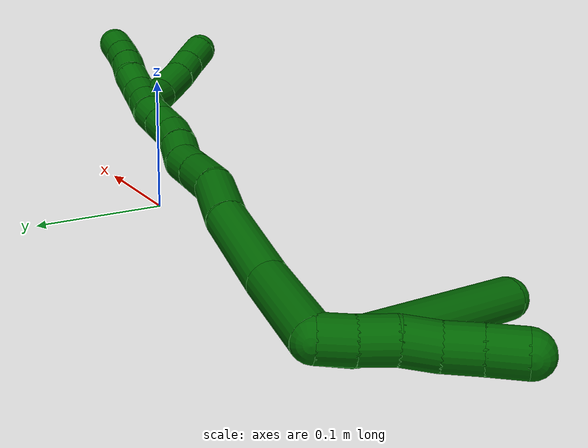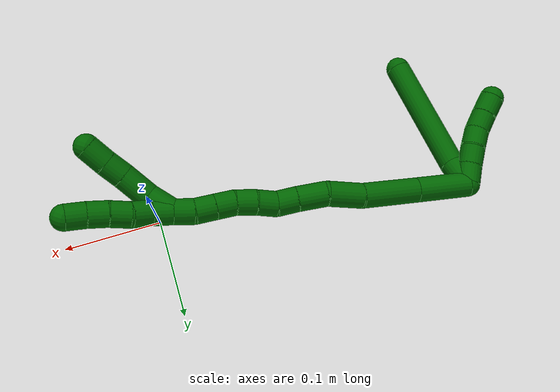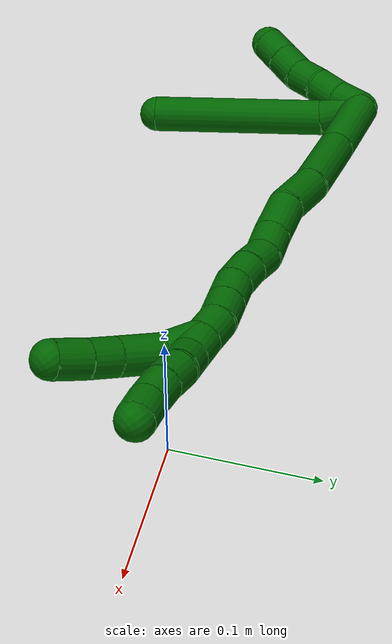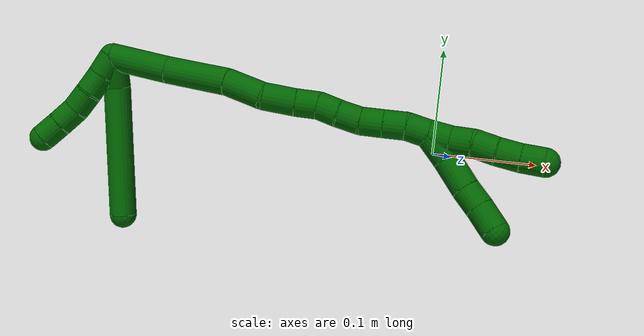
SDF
<sdf version="1.7">
 <world name="default">
  <model name="6">
   <static>0</static>
   <link name="6">
    <collision name="collision-cylinder-e_1_2_8">
     <pose>-0.008424 -0.00533 -0.010592 2.67539 -0.617701 -1.86214</pose>
     <geometry><cylinder><radius>0.0125</radius><length>0.029092</length></cylinder></geometry>
     <surface>
      <friction><ode><mu>1.16</mu><mu2>1.16</mu2><slip1>0</slip1><slip2>0</slip2></ode></friction>
      <contact><ode><kp>1e+06</kp><kd>1</kd><max_vel>0</max_vel><min_depth>0.001</min_depth></ode></contact>
     </surface>
    </collision>
    <visual name="visual-cylinder-e_1_2_8">
     <pose>-0.008424 -0.00533 -0.010592 2.67539 -0.617701 -1.86214</pose>
     <geometry><cylinder><radius>0.0125</radius><length>0.029092</length></cylinder></geometry>
     <material><ambient>0 0.392157 0.003922 1</ambient></material>
    </visual>
    <collision name="collision-cylinder-e_2_8_6">
     <pose>-0.039568 -0.046648 -0.06412 2.44399 -0.385276 -0.984617</pose>
     <geometry><cylinder><radius>0.0125</radius><length>0.120908</length></cylinder></geometry>
     <surface>
      <friction><ode><mu>1.16</mu><mu2>1.16</mu2><slip1>0</slip1><slip2>0</slip2></ode></friction>
      <contact><ode><kp>1e+06</kp><kd>1</kd><max_vel>0</max_vel><min_depth>0.001</min_depth></ode></contact>
     </surface>
    </collision>
    <visual name="visual-cylinder-e_2_8_6">
     <pose>-0.039568 -0.046648 -0.06412 2.44399 -0.385276 -0.984617</pose>
     <geometry><cylinder><radius>0.0125</radius><length>0.120908</length></cylinder></geometry>
     <material><ambient>0 0.392157 0.003922 1</ambient></material>
    </visual>
    <collision name="collision-cylinder-e_1_2_9">
     <pose>-0.006053 -0.007753 -0.001803 1.79933 -0.650081 -0.802675</pose>
     <geometry><cylinder><radius>0.0125</radius><length>0.02</length></cylinder></geometry>
     <surface>
      <friction><ode><mu>1.16</mu><mu2>1.16</mu2><slip1>0</slip1><slip2>0</slip2></ode></friction>
      <contact><ode><kp>1e+06</kp><kd>1</kd><max_vel>0</max_vel><min_depth>0.001</min_depth></ode></contact>
     </surface>
    </collision>
    <visual name="visual-cylinder-e_1_2_9">
     <pose>-0.006053 -0.007753 -0.001803 1.79933 -0.650081 -0.802675</pose>
     <geometry><cylinder><radius>0.0125</radius><length>0.02</length></cylinder></geometry>
     <material><ambient>0 0.392157 0.003922 1</ambient></material>
    </visual>
    <collision name="collision-cylinder-e_2_9_10">
     <pose>-0.017565 -0.023781 -0.00492 1.7282 -0.577634 -0.66979</pose>
     <geometry><cylinder><radius>0.0125</radius><length>0.02</length></cylinder></geometry>
     <surface>
      <friction><ode><mu>1.16</mu><mu2>1.16</mu2><slip1>0</slip1><slip2>0</slip2></ode></friction>
      <contact><ode><kp>1e+06</kp><kd>1</kd><max_vel>0</max_vel><min_depth>0.001</min_depth></ode></contact>
     </surface>
    </collision>
    <visual name="visual-cylinder-e_2_9_10">
     <pose>-0.017565 -0.023781 -0.00492 1.7282 -0.577634 -0.66979</pose>
     <geometry><cylinder><radius>0.0125</radius><length>0.02</length></cylinder></geometry>
     <material><ambient>0 0.392157 0.003922 1</ambient></material>
    </visual>
    <collision name="collision-cylinder-e_3_10_11">
     <pose>-0.029761 -0.039385 -0.007188 1.7003 -0.738936 -0.830612</pose>
     <geometry><cylinder><radius>0.0125</radius><length>0.02</length></cylinder></geometry>
     <surface>
      <friction><ode><mu>1.16</mu><mu2>1.16</mu2><slip1>0</slip1><slip2>0</slip2></ode></friction>
      <contact><ode><kp>1e+06</kp><kd>1</kd><max_vel>0</max_vel><min_depth>0.001</min_depth></ode></contact>
     </surface>
    </collision>
    <visual name="visual-cylinder-e_3_10_11">
     <pose>-0.029761 -0.039385 -0.007188 1.7003 -0.738936 -0.830612</pose>
     <geometry><cylinder><radius>0.0125</radius><length>0.02</length></cylinder></geometry>
     <material><ambient>0 0.392157 0.003922 1</ambient></material>
    </visual>
    <collision name="collision-cylinder-e_4_11_12">
     <pose>-0.042064 -0.054977 -0.00729 1.46802 -0.590495 -0.535581</pose>
     <geometry><cylinder><radius>0.0125</radius><length>0.02</length></cylinder></geometry>
     <surface>
      <friction><ode><mu>1.16</mu><mu2>1.16</mu2><slip1>0</slip1><slip2>0</slip2></ode></friction>
      <contact><ode><kp>1e+06</kp><kd>1</kd><max_vel>0</max_vel><min_depth>0.001</min_depth></ode></contact>
     </surface>
    </collision>
    <visual name="visual-cylinder-e_4_11_12">
     <pose>-0.042064 -0.054977 -0.00729 1.46802 -0.590495 -0.535581</pose>
     <geometry><cylinder><radius>0.0125</radius><length>0.02</length></cylinder></geometry>
     <material><ambient>0 0.392157 0.003922 1</ambient></material>
    </visual>
    <collision name="collision-cylinder-e_5_12_5">
     <pose>-0.053308 -0.071397 -0.005324 1.4351 -0.603712 -0.53068</pose>
     <geometry><cylinder><radius>0.0125</radius><length>0.02</length></cylinder></geometry>
     <surface>
      <friction><ode><mu>1.16</mu><mu2>1.16</mu2><slip1>0</slip1><slip2>0</slip2></ode></friction>
      <contact><ode><kp>1e+06</kp><kd>1</kd><max_vel>0</max_vel><min_depth>0.001</min_depth></ode></contact>
     </surface>
    </collision>
    <visual name="visual-cylinder-e_5_12_5">
     <pose>-0.053308 -0.071397 -0.005324 1.4351 -0.603712 -0.53068</pose>
     <geometry><cylinder><radius>0.0125</radius><length>0.02</length></cylinder></geometry>
     <material><ambient>0 0.392157 0.003922 1</ambient></material>
    </visual>
    <collision name="collision-cylinder-e_1_2_13">
     <pose>0.013857 0.006409 -0.022444 -2.86343 0.535755 -2.19836</pose>
     <geometry><cylinder><radius>0.0125</radius><length>0.054288</length></cylinder></geometry>
     <surface>
      <friction><ode><mu>1.16</mu><mu2>1.16</mu2><slip1>0</slip1><slip2>0</slip2></ode></friction>
      <contact><ode><kp>1e+06</kp><kd>1</kd><max_vel>0</max_vel><min_depth>0.001</min_depth></ode></contact>
     </surface>
    </collision>
    <visual name="visual-cylinder-e_1_2_13">
     <pose>0.013857 0.006409 -0.022444 -2.86343 0.535755 -2.19836</pose>
     <geometry><cylinder><radius>0.0125</radius><length>0.054288</length></cylinder></geometry>
     <material><ambient>0 0.392157 0.003922 1</ambient></material>
    </visual>
    <collision name="collision-cylinder-e_2_13_14">
     <pose>0.045727 0.018142 -0.067766 -2.91297 0.654192 -2.48899</pose>
     <geometry><cylinder><radius>0.0125</radius><length>0.059204</length></cylinder></geometry>
     <surface>
      <friction><ode><mu>1.16</mu><mu2>1.16</mu2><slip1>0</slip1><slip2>0</slip2></ode></friction>
      <contact><ode><kp>1e+06</kp><kd>1</kd><max_vel>0</max_vel><min_depth>0.001</min_depth></ode></contact>
     </surface>
    </collision>
    <visual name="visual-cylinder-e_2_13_14">
     <pose>0.045727 0.018142 -0.067766 -2.91297 0.654192 -2.48899</pose>
     <geometry><cylinder><radius>0.0125</radius><length>0.059204</length></cylinder></geometry>
     <material><ambient>0 0.392157 0.003922 1</ambient></material>
    </visual>
    <collision name="collision-cylinder-e_3_14_15">
     <pose>0.073117 0.024463 -0.10584 -3.07605 0.551938 -2.91108</pose>
     <geometry><cylinder><radius>0.0125</radius><length>0.035765</length></cylinder></geometry>
     <surface>
      <friction><ode><mu>1.16</mu><mu2>1.16</mu2><slip1>0</slip1><slip2>0</slip2></ode></friction>
      <contact><ode><kp>1e+06</kp><kd>1</kd><max_vel>0</max_vel><min_depth>0.001</min_depth></ode></contact>
     </surface>
    </collision>
    <visual name="visual-cylinder-e_3_14_15">
     <pose>0.073117 0.024463 -0.10584 -3.07605 0.551938 -2.91108</pose>
     <geometry><cylinder><radius>0.0125</radius><length>0.035765</length></cylinder></geometry>
     <material><ambient>0 0.392157 0.003922 1</ambient></material>
    </visual>
    <collision name="collision-cylinder-e_4_15_16">
     <pose>0.089131 0.030339 -0.133266 -2.76208 0.466874 -1.78265</pose>
     <geometry><cylinder><radius>0.0125</radius><length>0.029495</length></cylinder></geometry>
     <surface>
      <friction><ode><mu>1.16</mu><mu2>1.16</mu2><slip1>0</slip1><slip2>0</slip2></ode></friction>
      <contact><ode><kp>1e+06</kp><kd>1</kd><max_vel>0</max_vel><min_depth>0.001</min_depth></ode></contact>
     </surface>
    </collision>
    <visual name="visual-cylinder-e_4_15_16">
     <pose>0.089131 0.030339 -0.133266 -2.76208 0.466874 -1.78265</pose>
     <geometry><cylinder><radius>0.0125</radius><length>0.029495</length></cylinder></geometry>
     <material><ambient>0 0.392157 0.003922 1</ambient></material>
    </visual>
    <collision name="collision-cylinder-e_5_16_17">
     <pose>0.101072 0.038907 -0.153732 -2.72038 0.531386 -1.80983</pose>
     <geometry><cylinder><radius>0.0125</radius><length>0.02093</length></cylinder></geometry>
     <surface>
      <friction><ode><mu>1.16</mu><mu2>1.16</mu2><slip1>0</slip1><slip2>0</slip2></ode></friction>
      <contact><ode><kp>1e+06</kp><kd>1</kd><max_vel>0</max_vel><min_depth>0.001</min_depth></ode></contact>
     </surface>
    </collision>
    <visual name="visual-cylinder-e_5_16_17">
     <pose>0.101072 0.038907 -0.153732 -2.72038 0.531386 -1.80983</pose>
     <geometry><cylinder><radius>0.0125</radius><length>0.02093</length></cylinder></geometry>
     <material><ambient>0 0.392157 0.003922 1</ambient></material>
    </visual>
    <collision name="collision-cylinder-e_6_17_18">
     <pose>0.111921 0.042778 -0.170399 -3.11998 0.581666 -3.06941</pose>
     <geometry><cylinder><radius>0.0125</radius><length>0.020192</length></cylinder></geometry>
     <surface>
      <friction><ode><mu>1.16</mu><mu2>1.16</mu2><slip1>0</slip1><slip2>0</slip2></ode></friction>
      <contact><ode><kp>1e+06</kp><kd>1</kd><max_vel>0</max_vel><min_depth>0.001</min_depth></ode></contact>
     </surface>
    </collision>
    <visual name="visual-cylinder-e_6_17_18">
     <pose>0.111921 0.042778 -0.170399 -3.11998 0.581666 -3.06941</pose>
     <geometry><cylinder><radius>0.0125</radius><length>0.020192</length></cylinder></geometry>
     <material><ambient>0 0.392157 0.003922 1</ambient></material>
    </visual>
    <collision name="collision-cylinder-e_7_18_19">
     <pose>0.122529 0.044343 -0.187375 -2.98106 0.529148 -2.56436</pose>
     <geometry><cylinder><radius>0.0125</radius><length>0.020051</length></cylinder></geometry>
     <surface>
      <friction><ode><mu>1.16</mu><mu2>1.16</mu2><slip1>0</slip1><slip2>0</slip2></ode></friction>
      <contact><ode><kp>1e+06</kp><kd>1</kd><max_vel>0</max_vel><min_depth>0.001</min_depth></ode></contact>
     </surface>
    </collision>
    <visual name="visual-cylinder-e_7_18_19">
     <pose>0.122529 0.044343 -0.187375 -2.98106 0.529148 -2.56436</pose>
     <geometry><cylinder><radius>0.0125</radius><length>0.020051</length></cylinder></geometry>
     <material><ambient>0 0.392157 0.003922 1</ambient></material>
    </visual>
    <collision name="collision-cylinder-e_8_19_20">
     <pose>0.133485 0.048695 -0.203453 -2.76629 0.629239 -2.08521</pose>
     <geometry><cylinder><radius>0.0125</radius><length>0.020033</length></cylinder></geometry>
     <surface>
      <friction><ode><mu>1.16</mu><mu2>1.16</mu2><slip1>0</slip1><slip2>0</slip2></ode></friction>
      <contact><ode><kp>1e+06</kp><kd>1</kd><max_vel>0</max_vel><min_depth>0.001</min_depth></ode></contact>
     </surface>
    </collision>
    <visual name="visual-cylinder-e_8_19_20">
     <pose>0.133485 0.048695 -0.203453 -2.76629 0.629239 -2.08521</pose>
     <geometry><cylinder><radius>0.0125</radius><length>0.020033</length></cylinder></geometry>
     <material><ambient>0 0.392157 0.003922 1</ambient></material>
    </visual>
    <collision name="collision-cylinder-e_9_20_21">
     <pose>0.145346 0.054623 -0.218459 -2.76442 0.638603 -2.0945</pose>
     <geometry><cylinder><radius>0.0125</radius><length>0.020017</length></cylinder></geometry>
     <surface>
      <friction><ode><mu>1.16</mu><mu2>1.16</mu2><slip1>0</slip1><slip2>0</slip2></ode></friction>
      <contact><ode><kp>1e+06</kp><kd>1</kd><max_vel>0</max_vel><min_depth>0.001</min_depth></ode></contact>
     </surface>
    </collision>
    <visual name="visual-cylinder-e_9_20_21">
     <pose>0.145346 0.054623 -0.218459 -2.76442 0.638603 -2.0945</pose>
     <geometry><cylinder><radius>0.0125</radius><length>0.020017</length></cylinder></geometry>
     <material><ambient>0 0.392157 0.003922 1</ambient></material>
    </visual>
    <collision name="collision-cylinder-e_10_21_1">
     <pose>0.156226 0.058987 -0.23454 -2.97998 0.512983 -2.54261</pose>
     <geometry><cylinder><radius>0.0125</radius><length>0.020025</length></cylinder></geometry>
     <surface>
      <friction><ode><mu>1.16</mu><mu2>1.16</mu2><slip1>0</slip1><slip2>0</slip2></ode></friction>
      <contact><ode><kp>1e+06</kp><kd>1</kd><max_vel>0</max_vel><min_depth>0.001</min_depth></ode></contact>
     </surface>
    </collision>
    <visual name="visual-cylinder-e_10_21_1">
     <pose>0.156226 0.058987 -0.23454 -2.97998 0.512983 -2.54261</pose>
     <geometry><cylinder><radius>0.0125</radius><length>0.020025</length></cylinder></geometry>
     <material><ambient>0 0.392157 0.003922 1</ambient></material>
    </visual>
    <collision name="collision-cylinder-e_1_1_22">
     <pose>0.16663 0.061977 -0.251356 -2.95055 0.581212 -2.52152</pose>
     <geometry><cylinder><radius>0.0125</radius><length>0.02</length></cylinder></geometry>
     <surface>
      <friction><ode><mu>1.16</mu><mu2>1.16</mu2><slip1>0</slip1><slip2>0</slip2></ode></friction>
      <contact><ode><kp>1e+06</kp><kd>1</kd><max_vel>0</max_vel><min_depth>0.001</min_depth></ode></contact>
     </surface>
    </collision>
    <visual name="visual-cylinder-e_1_1_22">
     <pose>0.16663 0.061977 -0.251356 -2.95055 0.581212 -2.52152</pose>
     <geometry><cylinder><radius>0.0125</radius><length>0.02</length></cylinder></geometry>
     <material><ambient>0 0.392157 0.003922 1</ambient></material>
    </visual>
    <collision name="collision-cylinder-e_2_22_23">
     <pose>0.179593 0.064444 -0.266149 -3.0089 0.843945 -2.84772</pose>
     <geometry><cylinder><radius>0.0125</radius><length>0.02</length></cylinder></geometry>
     <surface>
      <friction><ode><mu>1.16</mu><mu2>1.16</mu2><slip1>0</slip1><slip2>0</slip2></ode></friction>
      <contact><ode><kp>1e+06</kp><kd>1</kd><max_vel>0</max_vel><min_depth>0.001</min_depth></ode></contact>
     </surface>
    </collision>
    <visual name="visual-cylinder-e_2_22_23">
     <pose>0.179593 0.064444 -0.266149 -3.0089 0.843945 -2.84772</pose>
     <geometry><cylinder><radius>0.0125</radius><length>0.02</length></cylinder></geometry>
     <material><ambient>0 0.392157 0.003922 1</ambient></material>
    </visual>
    <collision name="collision-cylinder-e_3_23_24">
     <pose>0.192897 0.065676 -0.280852 -3.09815 0.62253 -3.00675</pose>
     <geometry><cylinder><radius>0.0125</radius><length>0.02</length></cylinder></geometry>
     <surface>
      <friction><ode><mu>1.16</mu><mu2>1.16</mu2><slip1>0</slip1><slip2>0</slip2></ode></friction>
      <contact><ode><kp>1e+06</kp><kd>1</kd><max_vel>0</max_vel><min_depth>0.001</min_depth></ode></contact>
     </surface>
    </collision>
    <visual name="visual-cylinder-e_3_23_24">
     <pose>0.192897 0.065676 -0.280852 -3.09815 0.62253 -3.00675</pose>
     <geometry><cylinder><radius>0.0125</radius><length>0.02</length></cylinder></geometry>
     <material><ambient>0 0.392157 0.003922 1</ambient></material>
    </visual>
    <collision name="collision-cylinder-e_4_24_25">
     <pose>0.204377 0.067458 -0.297095 -2.96747 0.600333 -2.59189</pose>
     <geometry><cylinder><radius>0.0125</radius><length>0.02</length></cylinder></geometry>
     <surface>
      <friction><ode><mu>1.16</mu><mu2>1.16</mu2><slip1>0</slip1><slip2>0</slip2></ode></friction>
      <contact><ode><kp>1e+06</kp><kd>1</kd><max_vel>0</max_vel><min_depth>0.001</min_depth></ode></contact>
     </surface>
    </collision>
    <visual name="visual-cylinder-e_4_24_25">
     <pose>0.204377 0.067458 -0.297095 -2.96747 0.600333 -2.59189</pose>
     <geometry><cylinder><radius>0.0125</radius><length>0.02</length></cylinder></geometry>
     <material><ambient>0 0.392157 0.003922 1</ambient></material>
    </visual>
    <collision name="collision-cylinder-e_5_25_4">
     <pose>0.216404 0.07068 -0.312712 -2.90671 0.691642 -2.50867</pose>
     <geometry><cylinder><radius>0.0125</radius><length>0.02</length></cylinder></geometry>
     <surface>
      <friction><ode><mu>1.16</mu><mu2>1.16</mu2><slip1>0</slip1><slip2>0</slip2></ode></friction>
      <contact><ode><kp>1e+06</kp><kd>1</kd><max_vel>0</max_vel><min_depth>0.001</min_depth></ode></contact>
     </surface>
    </collision>
    <visual name="visual-cylinder-e_5_25_4">
     <pose>0.216404 0.07068 -0.312712 -2.90671 0.691642 -2.50867</pose>
     <geometry><cylinder><radius>0.0125</radius><length>0.02</length></cylinder></geometry>
     <material><ambient>0 0.392157 0.003922 1</ambient></material>
    </visual>
    <collision name="collision-cylinder-e_1_1_26">
     <pose>0.161628 0.056813 -0.255944 2.86891 0.03672 0.266107</pose>
     <geometry><cylinder><radius>0.0125</radius><length>0.026587</length></cylinder></geometry>
     <surface>
      <friction><ode><mu>1.16</mu><mu2>1.16</mu2><slip1>0</slip1><slip2>0</slip2></ode></friction>
      <contact><ode><kp>1e+06</kp><kd>1</kd><max_vel>0</max_vel><min_depth>0.001</min_depth></ode></contact>
     </surface>
    </collision>
    <visual name="visual-cylinder-e_1_1_26">
     <pose>0.161628 0.056813 -0.255944 2.86891 0.03672 0.266107</pose>
     <geometry><cylinder><radius>0.0125</radius><length>0.026587</length></cylinder></geometry>
     <material><ambient>0 0.392157 0.003922 1</ambient></material>
    </visual>
    <collision name="collision-cylinder-e_2_26_27">
     <pose>0.165135 0.046015 -0.281785 2.63612 0.199786 0.74039</pose>
     <geometry><cylinder><radius>0.0125</radius><length>0.030428</length></cylinder></geometry>
     <surface>
      <friction><ode><mu>1.16</mu><mu2>1.16</mu2><slip1>0</slip1><slip2>0</slip2></ode></friction>
      <contact><ode><kp>1e+06</kp><kd>1</kd><max_vel>0</max_vel><min_depth>0.001</min_depth></ode></contact>
     </surface>
    </collision>
    <visual name="visual-cylinder-e_2_26_27">
     <pose>0.165135 0.046015 -0.281785 2.63612 0.199786 0.74039</pose>
     <geometry><cylinder><radius>0.0125</radius><length>0.030428</length></cylinder></geometry>
     <material><ambient>0 0.392157 0.003922 1</ambient></material>
    </visual>
    <collision name="collision-cylinder-e_3_27_28">
     <pose>0.17103 0.034179 -0.303234 2.63936 0.291352 1.03903</pose>
     <geometry><cylinder><radius>0.0125</radius><length>0.020018</length></cylinder></geometry>
     <surface>
      <friction><ode><mu>1.16</mu><mu2>1.16</mu2><slip1>0</slip1><slip2>0</slip2></ode></friction>
      <contact><ode><kp>1e+06</kp><kd>1</kd><max_vel>0</max_vel><min_depth>0.001</min_depth></ode></contact>
     </surface>
    </collision>
    <visual name="visual-cylinder-e_3_27_28">
     <pose>0.17103 0.034179 -0.303234 2.63936 0.291352 1.03903</pose>
     <geometry><cylinder><radius>0.0125</radius><length>0.020018</length></cylinder></geometry>
     <material><ambient>0 0.392157 0.003922 1</ambient></material>
    </visual>
    <collision name="collision-cylinder-e_4_28_3">
     <pose>0.176956 0.023731 -0.321047 2.58669 0.268952 0.886972</pose>
     <geometry><cylinder><radius>0.0125</radius><length>0.022967</length></cylinder></geometry>
     <surface>
      <friction><ode><mu>1.16</mu><mu2>1.16</mu2><slip1>0</slip1><slip2>0</slip2></ode></friction>
      <contact><ode><kp>1e+06</kp><kd>1</kd><max_vel>0</max_vel><min_depth>0.001</min_depth></ode></contact>
     </surface>
    </collision>
    <visual name="visual-cylinder-e_4_28_3">
     <pose>0.176956 0.023731 -0.321047 2.58669 0.268952 0.886972</pose>
     <geometry><cylinder><radius>0.0125</radius><length>0.022967</length></cylinder></geometry>
     <material><ambient>0 0.392157 0.003922 1</ambient></material>
    </visual>
    <collision name="collision-sphere-3">
     <pose>0.180007 0.017899 -0.330457 0 -0 0</pose>
     <geometry><sphere><radius>0.0125</radius></sphere></geometry>
     <surface>
      <friction><ode><mu>1.16</mu><mu2>1.16</mu2><slip1>0</slip1><slip2>0</slip2></ode></friction>
      <contact><ode><kp>1e+06</kp><kd>1</kd><max_vel>0</max_vel><min_depth>0.001</min_depth></ode></contact>
     </surface>
    </collision>
    <visual name="visual-sphere-3">
     <pose>0.180007 0.017899 -0.330457 0 -0 0</pose>
     <geometry><sphere><radius>0.0125</radius></sphere></geometry>
     <material><ambient>0 0.392157 0.003922 1</ambient></material>
    </visual>
    <collision name="collision-sphere-28">
     <pose>0.173905 0.029564 -0.311638 0 -0 0</pose>
     <geometry><sphere><radius>0.0125</radius></sphere></geometry>
     <surface>
      <friction><ode><mu>1.16</mu><mu2>1.16</mu2><slip1>0</slip1><slip2>0</slip2></ode></friction>
      <contact><ode><kp>1e+06</kp><kd>1</kd><max_vel>0</max_vel><min_depth>0.001</min_depth></ode></contact>
     </surface>
    </collision>
    <visual name="visual-sphere-28">
     <pose>0.173905 0.029564 -0.311638 0 -0 0</pose>
     <geometry><sphere><radius>0.0125</radius></sphere></geometry>
     <material><ambient>0 0.392157 0.003922 1</ambient></material>
    </visual>
    <collision name="collision-sphere-27">
     <pose>0.168155 0.038794 -0.294831 0 -0 0</pose>
     <geometry><sphere><radius>0.0125</radius></sphere></geometry>
     <surface>
      <friction><ode><mu>1.16</mu><mu2>1.16</mu2><slip1>0</slip1><slip2>0</slip2></ode></friction>
      <contact><ode><kp>1e+06</kp><kd>1</kd><max_vel>0</max_vel><min_depth>0.001</min_depth></ode></contact>
     </surface>
    </collision>
    <visual name="visual-sphere-27">
     <pose>0.168155 0.038794 -0.294831 0 -0 0</pose>
     <geometry><sphere><radius>0.0125</radius></sphere></geometry>
     <material><ambient>0 0.392157 0.003922 1</ambient></material>
    </visual>
    <collision name="collision-sphere-26">
     <pose>0.162116 0.053235 -0.268738 0 -0 0</pose>
     <geometry><sphere><radius>0.0125</radius></sphere></geometry>
     <surface>
      <friction><ode><mu>1.16</mu><mu2>1.16</mu2><slip1>0</slip1><slip2>0</slip2></ode></friction>
      <contact><ode><kp>1e+06</kp><kd>1</kd><max_vel>0</max_vel><min_depth>0.001</min_depth></ode></contact>
     </surface>
    </collision>
    <visual name="visual-sphere-26">
     <pose>0.162116 0.053235 -0.268738 0 -0 0</pose>
     <geometry><sphere><radius>0.0125</radius></sphere></geometry>
     <material><ambient>0 0.392157 0.003922 1</ambient></material>
    </visual>
    <collision name="collision-sphere-4">
     <pose>0.222782 0.072472 -0.320203 0 -0 0</pose>
     <geometry><sphere><radius>0.0125</radius></sphere></geometry>
     <surface>
      <friction><ode><mu>1.16</mu><mu2>1.16</mu2><slip1>0</slip1><slip2>0</slip2></ode></friction>
      <contact><ode><kp>1e+06</kp><kd>1</kd><max_vel>0</max_vel><min_depth>0.001</min_depth></ode></contact>
     </surface>
    </collision>
    <visual name="visual-sphere-4">
     <pose>0.222782 0.072472 -0.320203 0 -0 0</pose>
     <geometry><sphere><radius>0.0125</radius></sphere></geometry>
     <material><ambient>0 0.392157 0.003922 1</ambient></material>
    </visual>
    <collision name="collision-sphere-25">
     <pose>0.210026 0.068887 -0.305222 0 -0 0</pose>
     <geometry><sphere><radius>0.0125</radius></sphere></geometry>
     <surface>
      <friction><ode><mu>1.16</mu><mu2>1.16</mu2><slip1>0</slip1><slip2>0</slip2></ode></friction>
      <contact><ode><kp>1e+06</kp><kd>1</kd><max_vel>0</max_vel><min_depth>0.001</min_depth></ode></contact>
     </surface>
    </collision>
    <visual name="visual-sphere-25">
     <pose>0.210026 0.068887 -0.305222 0 -0 0</pose>
     <geometry><sphere><radius>0.0125</radius></sphere></geometry>
     <material><ambient>0 0.392157 0.003922 1</ambient></material>
    </visual>
    <collision name="collision-sphere-24">
     <pose>0.198728 0.066028 -0.288969 0 -0 0</pose>
     <geometry><sphere><radius>0.0125</radius></sphere></geometry>
     <surface>
      <friction><ode><mu>1.16</mu><mu2>1.16</mu2><slip1>0</slip1><slip2>0</slip2></ode></friction>
      <contact><ode><kp>1e+06</kp><kd>1</kd><max_vel>0</max_vel><min_depth>0.001</min_depth></ode></contact>
     </surface>
    </collision>
    <visual name="visual-sphere-24">
     <pose>0.198728 0.066028 -0.288969 0 -0 0</pose>
     <geometry><sphere><radius>0.0125</radius></sphere></geometry>
     <material><ambient>0 0.392157 0.003922 1</ambient></material>
    </visual>
    <collision name="collision-sphere-23">
     <pose>0.187066 0.065323 -0.272736 0 -0 0</pose>
     <geometry><sphere><radius>0.0125</radius></sphere></geometry>
     <surface>
      <friction><ode><mu>1.16</mu><mu2>1.16</mu2><slip1>0</slip1><slip2>0</slip2></ode></friction>
      <contact><ode><kp>1e+06</kp><kd>1</kd><max_vel>0</max_vel><min_depth>0.001</min_depth></ode></contact>
     </surface>
    </collision>
    <visual name="visual-sphere-23">
     <pose>0.187066 0.065323 -0.272736 0 -0 0</pose>
     <geometry><sphere><radius>0.0125</radius></sphere></geometry>
     <material><ambient>0 0.392157 0.003922 1</ambient></material>
    </visual>
    <collision name="collision-sphere-22">
     <pose>0.17212 0.063564 -0.259562 0 -0 0</pose>
     <geometry><sphere><radius>0.0125</radius></sphere></geometry>
     <surface>
      <friction><ode><mu>1.16</mu><mu2>1.16</mu2><slip1>0</slip1><slip2>0</slip2></ode></friction>
      <contact><ode><kp>1e+06</kp><kd>1</kd><max_vel>0</max_vel><min_depth>0.001</min_depth></ode></contact>
     </surface>
    </collision>
    <visual name="visual-sphere-22">
     <pose>0.17212 0.063564 -0.259562 0 -0 0</pose>
     <geometry><sphere><radius>0.0125</radius></sphere></geometry>
     <material><ambient>0 0.392157 0.003922 1</ambient></material>
    </visual>
    <collision name="collision-sphere-1">
     <pose>0.16114 0.06039 -0.24315 0 -0 0</pose>
     <geometry><sphere><radius>0.0125</radius></sphere></geometry>
     <surface>
      <friction><ode><mu>1.16</mu><mu2>1.16</mu2><slip1>0</slip1><slip2>0</slip2></ode></friction>
      <contact><ode><kp>1e+06</kp><kd>1</kd><max_vel>0</max_vel><min_depth>0.001</min_depth></ode></contact>
     </surface>
    </collision>
    <visual name="visual-sphere-1">
     <pose>0.16114 0.06039 -0.24315 0 -0 0</pose>
     <geometry><sphere><radius>0.0125</radius></sphere></geometry>
     <material><ambient>0 0.392157 0.003922 1</ambient></material>
    </visual>
    <collision name="collision-sphere-21">
     <pose>0.151312 0.057583 -0.22593 0 -0 0</pose>
     <geometry><sphere><radius>0.0125</radius></sphere></geometry>
     <surface>
      <friction><ode><mu>1.16</mu><mu2>1.16</mu2><slip1>0</slip1><slip2>0</slip2></ode></friction>
      <contact><ode><kp>1e+06</kp><kd>1</kd><max_vel>0</max_vel><min_depth>0.001</min_depth></ode></contact>
     </surface>
    </collision>
    <visual name="visual-sphere-21">
     <pose>0.151312 0.057583 -0.22593 0 -0 0</pose>
     <geometry><sphere><radius>0.0125</radius></sphere></geometry>
     <material><ambient>0 0.392157 0.003922 1</ambient></material>
    </visual>
    <collision name="collision-sphere-11">
     <pose>-0.036496 -0.046715 -0.008142 0 -0 0</pose>
     <geometry><sphere><radius>0.0125</radius></sphere></geometry>
     <surface>
      <friction><ode><mu>1.16</mu><mu2>1.16</mu2><slip1>0</slip1><slip2>0</slip2></ode></friction>
      <contact><ode><kp>1e+06</kp><kd>1</kd><max_vel>0</max_vel><min_depth>0.001</min_depth></ode></contact>
     </surface>
    </collision>
    <visual name="visual-sphere-11">
     <pose>-0.036496 -0.046715 -0.008142 0 -0 0</pose>
     <geometry><sphere><radius>0.0125</radius></sphere></geometry>
     <material><ambient>0 0.392157 0.003922 1</ambient></material>
    </visual>
    <collision name="collision-sphere-10">
     <pose>-0.023026 -0.032055 -0.006233 0 -0 0</pose>
     <geometry><sphere><radius>0.0125</radius></sphere></geometry>
     <surface>
      <friction><ode><mu>1.16</mu><mu2>1.16</mu2><slip1>0</slip1><slip2>0</slip2></ode></friction>
      <contact><ode><kp>1e+06</kp><kd>1</kd><max_vel>0</max_vel><min_depth>0.001</min_depth></ode></contact>
     </surface>
    </collision>
    <visual name="visual-sphere-10">
     <pose>-0.023026 -0.032055 -0.006233 0 -0 0</pose>
     <geometry><sphere><radius>0.0125</radius></sphere></geometry>
     <material><ambient>0 0.392157 0.003922 1</ambient></material>
    </visual>
    <collision name="collision-sphere-6">
     <pose>-0.062288 -0.082636 -0.107055 0 -0 0</pose>
     <geometry><sphere><radius>0.0125</radius></sphere></geometry>
     <surface>
      <friction><ode><mu>1.16</mu><mu2>1.16</mu2><slip1>0</slip1><slip2>0</slip2></ode></friction>
      <contact><ode><kp>1e+06</kp><kd>1</kd><max_vel>0</max_vel><min_depth>0.001</min_depth></ode></contact>
     </surface>
    </collision>
    <visual name="visual-sphere-6">
     <pose>-0.062288 -0.082636 -0.107055 0 -0 0</pose>
     <geometry><sphere><radius>0.0125</radius></sphere></geometry>
     <material><ambient>0 0.392157 0.003922 1</ambient></material>
    </visual>
    <collision name="collision-sphere-9">
     <pose>-0.012105 -0.015507 -0.003607 0 -0 0</pose>
     <geometry><sphere><radius>0.0125</radius></sphere></geometry>
     <surface>
      <friction><ode><mu>1.16</mu><mu2>1.16</mu2><slip1>0</slip1><slip2>0</slip2></ode></friction>
      <contact><ode><kp>1e+06</kp><kd>1</kd><max_vel>0</max_vel><min_depth>0.001</min_depth></ode></contact>
     </surface>
    </collision>
    <visual name="visual-sphere-9">
     <pose>-0.012105 -0.015507 -0.003607 0 -0 0</pose>
     <geometry><sphere><radius>0.0125</radius></sphere></geometry>
     <material><ambient>0 0.392157 0.003922 1</ambient></material>
    </visual>
    <collision name="collision-sphere-2">
     <geometry><sphere><radius>0.0125</radius></sphere></geometry>
     <surface>
      <friction><ode><mu>1.16</mu><mu2>1.16</mu2><slip1>0</slip1><slip2>0</slip2></ode></friction>
      <contact><ode><kp>1e+06</kp><kd>1</kd><max_vel>0</max_vel><min_depth>0.001</min_depth></ode></contact>
     </surface>
    </collision>
    <visual name="visual-sphere-2">
     <geometry><sphere><radius>0.0125</radius></sphere></geometry>
     <material><ambient>0 0.392157 0.003922 1</ambient></material>
    </visual>
    <collision name="collision-sphere-19">
     <pose>0.12759 0.045727 -0.195918 0 -0 0</pose>
     <geometry><sphere><radius>0.0125</radius></sphere></geometry>
     <surface>
      <friction><ode><mu>1.16</mu><mu2>1.16</mu2><slip1>0</slip1><slip2>0</slip2></ode></friction>
      <contact><ode><kp>1e+06</kp><kd>1</kd><max_vel>0</max_vel><min_depth>0.001</min_depth></ode></contact>
     </surface>
    </collision>
    <visual name="visual-sphere-19">
     <pose>0.12759 0.045727 -0.195918 0 -0 0</pose>
     <geometry><sphere><radius>0.0125</radius></sphere></geometry>
     <material><ambient>0 0.392157 0.003922 1</ambient></material>
    </visual>
    <collision name="collision-sphere-8">
     <pose>-0.016849 -0.01066 -0.021185 0 -0 0</pose>
     <geometry><sphere><radius>0.0125</radius></sphere></geometry>
     <surface>
      <friction><ode><mu>1.16</mu><mu2>1.16</mu2><slip1>0</slip1><slip2>0</slip2></ode></friction>
      <contact><ode><kp>1e+06</kp><kd>1</kd><max_vel>0</max_vel><min_depth>0.001</min_depth></ode></contact>
     </surface>
    </collision>
    <visual name="visual-sphere-8">
     <pose>-0.016849 -0.01066 -0.021185 0 -0 0</pose>
     <geometry><sphere><radius>0.0125</radius></sphere></geometry>
     <material><ambient>0 0.392157 0.003922 1</ambient></material>
    </visual>
    <collision name="collision-sphere-12">
     <pose>-0.047631 -0.06324 -0.006438 0 -0 0</pose>
     <geometry><sphere><radius>0.0125</radius></sphere></geometry>
     <surface>
      <friction><ode><mu>1.16</mu><mu2>1.16</mu2><slip1>0</slip1><slip2>0</slip2></ode></friction>
      <contact><ode><kp>1e+06</kp><kd>1</kd><max_vel>0</max_vel><min_depth>0.001</min_depth></ode></contact>
     </surface>
    </collision>
    <visual name="visual-sphere-12">
     <pose>-0.047631 -0.06324 -0.006438 0 -0 0</pose>
     <geometry><sphere><radius>0.0125</radius></sphere></geometry>
     <material><ambient>0 0.392157 0.003922 1</ambient></material>
    </visual>
    <collision name="collision-sphere-5">
     <pose>-0.058985 -0.079554 -0.004211 0 -0 0</pose>
     <geometry><sphere><radius>0.0125</radius></sphere></geometry>
     <surface>
      <friction><ode><mu>1.16</mu><mu2>1.16</mu2><slip1>0</slip1><slip2>0</slip2></ode></friction>
      <contact><ode><kp>1e+06</kp><kd>1</kd><max_vel>0</max_vel><min_depth>0.001</min_depth></ode></contact>
     </surface>
    </collision>
    <visual name="visual-sphere-5">
     <pose>-0.058985 -0.079554 -0.004211 0 -0 0</pose>
     <geometry><sphere><radius>0.0125</radius></sphere></geometry>
     <material><ambient>0 0.392157 0.003922 1</ambient></material>
    </visual>
    <collision name="collision-sphere-13">
     <pose>0.027714 0.012818 -0.044887 0 -0 0</pose>
     <geometry><sphere><radius>0.0125</radius></sphere></geometry>
     <surface>
      <friction><ode><mu>1.16</mu><mu2>1.16</mu2><slip1>0</slip1><slip2>0</slip2></ode></friction>
      <contact><ode><kp>1e+06</kp><kd>1</kd><max_vel>0</max_vel><min_depth>0.001</min_depth></ode></contact>
     </surface>
    </collision>
    <visual name="visual-sphere-13">
     <pose>0.027714 0.012818 -0.044887 0 -0 0</pose>
     <geometry><sphere><radius>0.0125</radius></sphere></geometry>
     <material><ambient>0 0.392157 0.003922 1</ambient></material>
    </visual>
    <collision name="collision-sphere-14">
     <pose>0.06374 0.023466 -0.090646 0 -0 0</pose>
     <geometry><sphere><radius>0.0125</radius></sphere></geometry>
     <surface>
      <friction><ode><mu>1.16</mu><mu2>1.16</mu2><slip1>0</slip1><slip2>0</slip2></ode></friction>
      <contact><ode><kp>1e+06</kp><kd>1</kd><max_vel>0</max_vel><min_depth>0.001</min_depth></ode></contact>
     </surface>
    </collision>
    <visual name="visual-sphere-14">
     <pose>0.06374 0.023466 -0.090646 0 -0 0</pose>
     <geometry><sphere><radius>0.0125</radius></sphere></geometry>
     <material><ambient>0 0.392157 0.003922 1</ambient></material>
    </visual>
    <collision name="collision-sphere-15">
     <pose>0.082493 0.02546 -0.121034 0 -0 0</pose>
     <geometry><sphere><radius>0.0125</radius></sphere></geometry>
     <surface>
      <friction><ode><mu>1.16</mu><mu2>1.16</mu2><slip1>0</slip1><slip2>0</slip2></ode></friction>
      <contact><ode><kp>1e+06</kp><kd>1</kd><max_vel>0</max_vel><min_depth>0.001</min_depth></ode></contact>
     </surface>
    </collision>
    <visual name="visual-sphere-15">
     <pose>0.082493 0.02546 -0.121034 0 -0 0</pose>
     <geometry><sphere><radius>0.0125</radius></sphere></geometry>
     <material><ambient>0 0.392157 0.003922 1</ambient></material>
    </visual>
    <collision name="collision-sphere-16">
     <pose>0.095769 0.035218 -0.145498 0 -0 0</pose>
     <geometry><sphere><radius>0.0125</radius></sphere></geometry>
     <surface>
      <friction><ode><mu>1.16</mu><mu2>1.16</mu2><slip1>0</slip1><slip2>0</slip2></ode></friction>
      <contact><ode><kp>1e+06</kp><kd>1</kd><max_vel>0</max_vel><min_depth>0.001</min_depth></ode></contact>
     </surface>
    </collision>
    <visual name="visual-sphere-16">
     <pose>0.095769 0.035218 -0.145498 0 -0 0</pose>
     <geometry><sphere><radius>0.0125</radius></sphere></geometry>
     <material><ambient>0 0.392157 0.003922 1</ambient></material>
    </visual>
    <collision name="collision-sphere-17">
     <pose>0.106374 0.042595 -0.161965 0 -0 0</pose>
     <geometry><sphere><radius>0.0125</radius></sphere></geometry>
     <surface>
      <friction><ode><mu>1.16</mu><mu2>1.16</mu2><slip1>0</slip1><slip2>0</slip2></ode></friction>
      <contact><ode><kp>1e+06</kp><kd>1</kd><max_vel>0</max_vel><min_depth>0.001</min_depth></ode></contact>
     </surface>
    </collision>
    <visual name="visual-sphere-17">
     <pose>0.106374 0.042595 -0.161965 0 -0 0</pose>
     <geometry><sphere><radius>0.0125</radius></sphere></geometry>
     <material><ambient>0 0.392157 0.003922 1</ambient></material>
    </visual>
    <collision name="collision-sphere-18">
     <pose>0.117468 0.04296 -0.178832 0 -0 0</pose>
     <geometry><sphere><radius>0.0125</radius></sphere></geometry>
     <surface>
      <friction><ode><mu>1.16</mu><mu2>1.16</mu2><slip1>0</slip1><slip2>0</slip2></ode></friction>
      <contact><ode><kp>1e+06</kp><kd>1</kd><max_vel>0</max_vel><min_depth>0.001</min_depth></ode></contact>
     </surface>
    </collision>
    <visual name="visual-sphere-18">
     <pose>0.117468 0.04296 -0.178832 0 -0 0</pose>
     <geometry><sphere><radius>0.0125</radius></sphere></geometry>
     <material><ambient>0 0.392157 0.003922 1</ambient></material>
    </visual>
    <collision name="collision-sphere-20">
     <pose>0.13938 0.051663 -0.210987 0 -0 0</pose>
     <geometry><sphere><radius>0.0125</radius></sphere></geometry>
     <surface>
      <friction><ode><mu>1.16</mu><mu2>1.16</mu2><slip1>0</slip1><slip2>0</slip2></ode></friction>
      <contact><ode><kp>1e+06</kp><kd>1</kd><max_vel>0</max_vel><min_depth>0.001</min_depth></ode></contact>
     </surface>
    </collision>
    <visual name="visual-sphere-20">
     <pose>0.13938 0.051663 -0.210987 0 -0 0</pose>
     <geometry><sphere><radius>0.0125</radius></sphere></geometry>
     <material><ambient>0 0.392157 0.003922 1</ambient></material>
    </visual>
    <inertial>
     <pose>0.069668 0.01335 -0.136112 0 -0 0</pose>
     <mass>0.75</mass>
     <inertia>
      <ixx>-8.6e-05</ixx>
      <ixy>0</ixy>
      <ixz>0</ixz>
      <iyy>-0.000148</iyy>
      <iyz>0</iyz>
      <izz>7.8e-05</izz>
     </inertia>
    </inertial>
   </link>
   <pose>-0.308632 0.057839 0.031516 -1.3123 -0.935556 0.713985</pose>
  </model>
 </world>
</sdf>
